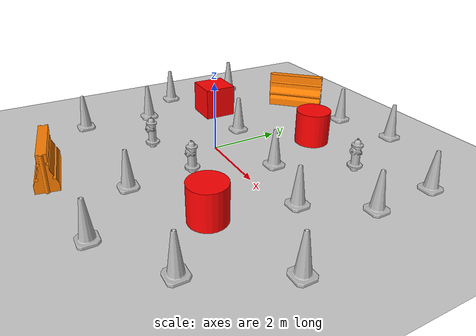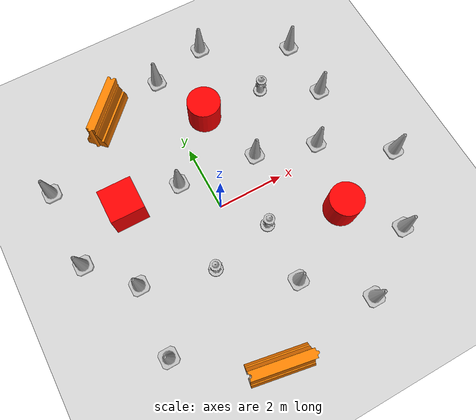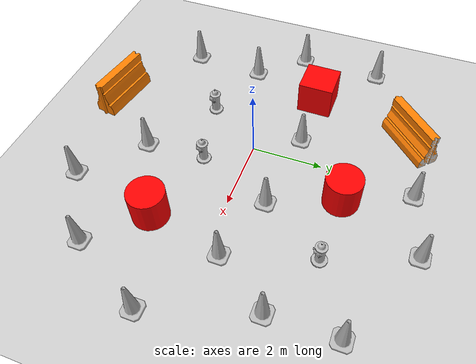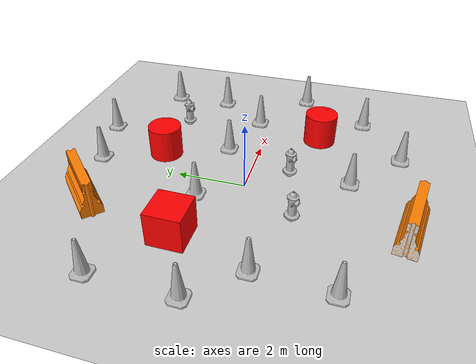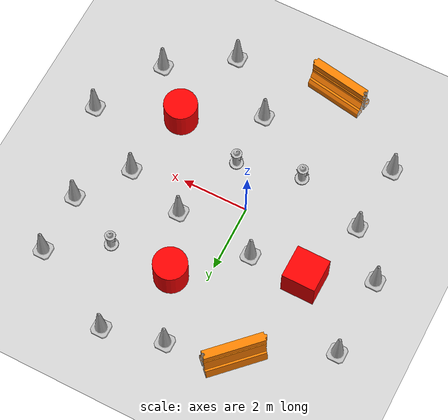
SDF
<sdf version="1.7">
 <world name="default">
  <model name="ground_plane">
   <static>1</static>
   <static>1</static>
   <link name="link">
    <collision name="collision">
     <geometry><plane><normal>0 0 1</normal><size>100 100</size></plane></geometry>
     <surface><friction><ode><mu>100</mu><mu2>50</mu2></ode></friction></surface>
    </collision>
    <visual name="visual">
     <cast_shadows>0</cast_shadows>
     <geometry><plane><normal>0 0 1</normal><size>100 100</size></plane></geometry>
     <material>
      <script><uri>file://media/materials/scripts/gazebo.material</uri><name>Gazebo/Grey</name></script>
     </material>
    </visual>
   </link>
  </model>
  <gravity>0 0 -9.8</gravity>
  <magnetic_field>6e-06 2.3e-05 -4.2e-05</magnetic_field>
  <atmosphere type="adiabatic"/>
  <physics type="ode">
   <max_step_size>0.001</max_step_size>
   <real_time_factor>1</real_time_factor>
   <real_time_update_rate>1000</real_time_update_rate>
  </physics>
  <scene><ambient>0.4 0.4 0.4 1</ambient><background>0.7 0.7 0.7 1</background><shadows>1</shadows></scene>
  <audio><device>default</device></audio>
  <spherical_coordinates>
   <surface_model>EARTH_WGS84</surface_model>
   <latitude_deg>0</latitude_deg>
   <longitude_deg>0</longitude_deg>
   <elevation>0</elevation>
   <heading_deg>0</heading_deg>
  </spherical_coordinates>
  <model name="Construction Cone">
   <static>1</static>
   <link name="link">
    <collision name="collision">
     <geometry>
      <mesh><scale>10 10 10</scale><uri>model://construction_cone/meshes/construction_cone.dae</uri></mesh>
     </geometry>
    </collision>
    <visual name="visual">
     <geometry>
      <mesh><scale>10 10 10</scale><uri>model://construction_cone/meshes/construction_cone.dae</uri></mesh>
     </geometry>
    </visual>
    <inertial>
     <inertia><ixx>1</ixx><ixy>0</ixy><ixz>0</ixz><iyy>1</iyy><iyz>0</iyz><izz>1</izz></inertia>
     <mass>1</mass>
    </inertial>
   </link>
   <pose>-0.747749 1.20224 -8e-06 -6e-06 -0 -0</pose>
  </model>
  <model name="Construction Cone_2_clone_1">
   <static>1</static>
   <link name="link">
    <collision name="collision">
     <geometry>
      <mesh><scale>10 10 10</scale><uri>model://construction_cone/meshes/construction_cone.dae</uri></mesh>
     </geometry>
    </collision>
    <visual name="visual">
     <geometry>
      <mesh><scale>10 10 10</scale><uri>model://construction_cone/meshes/construction_cone.dae</uri></mesh>
     </geometry>
    </visual>
    <inertial>
     <inertia><ixx>1</ixx><ixy>0</ixy><ixz>0</ixz><iyy>1</iyy><iyz>0</iyz><izz>1</izz></inertia>
     <mass>1</mass>
    </inertial>
   </link>
   <pose>3.49756 0.396737 -0 0 -0 0</pose>
  </model>
  <model name="Construction Cone_2_clone_2">
   <static>1</static>
   <link name="link">
    <collision name="collision">
     <geometry>
      <mesh><scale>10 10 10</scale><uri>model://construction_cone/meshes/construction_cone.dae</uri></mesh>
     </geometry>
    </collision>
    <visual name="visual">
     <geometry>
      <mesh><scale>10 10 10</scale><uri>model://construction_cone/meshes/construction_cone.dae</uri></mesh>
     </geometry>
    </visual>
    <inertial>
     <inertia><ixx>1</ixx><ixy>0</ixy><ixz>0</ixz><iyy>1</iyy><iyz>0</iyz><izz>1</izz></inertia>
     <mass>1</mass>
    </inertial>
   </link>
   <pose>-3.067 -0.950282 -0 0 -0 0</pose>
  </model>
  <model name="Construction Cone_2_clone_3">
   <static>1</static>
   <link name="link">
    <collision name="collision">
     <geometry>
      <mesh><scale>10 10 10</scale><uri>model://construction_cone/meshes/construction_cone.dae</uri></mesh>
     </geometry>
    </collision>
    <visual name="visual">
     <geometry>
      <mesh><scale>10 10 10</scale><uri>model://construction_cone/meshes/construction_cone.dae</uri></mesh>
     </geometry>
    </visual>
    <inertial>
     <inertia><ixx>1</ixx><ixy>0</ixy><ixz>0</ixz><iyy>1</iyy><iyz>0</iyz><izz>1</izz></inertia>
     <mass>1</mass>
    </inertial>
   </link>
   <pose>0.88255 -2.90169 -0 0 -1e-06 0</pose>
  </model>
  <model name="Construction Cone_2_clone_5">
   <static>1</static>
   <link name="link">
    <collision name="collision">
     <geometry>
      <mesh><scale>10 10 10</scale><uri>model://construction_cone/meshes/construction_cone.dae</uri></mesh>
     </geometry>
    </collision>
    <visual name="visual">
     <geometry>
      <mesh><scale>10 10 10</scale><uri>model://construction_cone/meshes/construction_cone.dae</uri></mesh>
     </geometry>
    </visual>
    <inertial>
     <inertia><ixx>1</ixx><ixy>0</ixy><ixz>0</ixz><iyy>1</iyy><iyz>0</iyz><izz>1</izz></inertia>
     <mass>1</mass>
    </inertial>
   </link>
   <pose>1.66784 0.95456 -0 0 -0 0</pose>
  </model>
  <model name="Construction Cone_2_clone_6">
   <static>1</static>
   <link name="link">
    <collision name="collision">
     <geometry>
      <mesh><scale>10 10 10</scale><uri>model://construction_cone/meshes/construction_cone.dae</uri></mesh>
     </geometry>
    </collision>
    <visual name="visual">
     <geometry>
      <mesh><scale>10 10 10</scale><uri>model://construction_cone/meshes/construction_cone.dae</uri></mesh>
     </geometry>
    </visual>
    <inertial>
     <inertia><ixx>1</ixx><ixy>0</ixy><ixz>0</ixz><iyy>1</iyy><iyz>0</iyz><izz>1</izz></inertia>
     <mass>1</mass>
    </inertial>
   </link>
   <pose>5.43273 -0.904996 -0 0 -0 0</pose>
  </model>
  <model name="Construction Cone_2_clone_7">
   <static>1</static>
   <link name="link">
    <collision name="collision">
     <geometry>
      <mesh><scale>10 10 10</scale><uri>model://construction_cone/meshes/construction_cone.dae</uri></mesh>
     </geometry>
    </collision>
    <visual name="visual">
     <geometry>
      <mesh><scale>10 10 10</scale><uri>model://construction_cone/meshes/construction_cone.dae</uri></mesh>
     </geometry>
    </visual>
    <inertial>
     <inertia><ixx>1</ixx><ixy>0</ixy><ixz>0</ixz><iyy>1</iyy><iyz>0</iyz><izz>1</izz></inertia>
     <mass>1</mass>
    </inertial>
   </link>
   <pose>0.164914 4.59321 -0 0 -1e-06 0</pose>
  </model>
  <model name="Construction Cone_2_clone_10">
   <static>1</static>
   <link name="link">
    <collision name="collision">
     <geometry>
      <mesh><scale>10 10 10</scale><uri>model://construction_cone/meshes/construction_cone.dae</uri></mesh>
     </geometry>
    </collision>
    <visual name="visual">
     <geometry>
      <mesh><scale>10 10 10</scale><uri>model://construction_cone/meshes/construction_cone.dae</uri></mesh>
     </geometry>
    </visual>
    <inertial>
     <inertia><ixx>1</ixx><ixy>0</ixy><ixz>0</ixz><iyy>1</iyy><iyz>0</iyz><izz>1</izz></inertia>
     <mass>1</mass>
    </inertial>
   </link>
   <pose>4.53467 1.89608 -0 0 -1e-06 0</pose>
  </model>
  <model name="Construction Cone_2_clone_12">
   <static>1</static>
   <link name="link">
    <collision name="collision">
     <geometry>
      <mesh><scale>10 10 10</scale><uri>model://construction_cone/meshes/construction_cone.dae</uri></mesh>
     </geometry>
    </collision>
    <visual name="visual">
     <geometry>
      <mesh><scale>10 10 10</scale><uri>model://construction_cone/meshes/construction_cone.dae</uri></mesh>
     </geometry>
    </visual>
    <inertial>
     <inertia><ixx>1</ixx><ixy>0</ixy><ixz>0</ixz><iyy>1</iyy><iyz>0</iyz><izz>1</izz></inertia>
     <mass>1</mass>
    </inertial>
   </link>
   <pose>-3.18421 -3.03294 -1e-06 2e-06 2e-06 0</pose>
  </model>
  <model name="Construction Cone_2_clone_14">
   <static>1</static>
   <link name="link">
    <collision name="collision">
     <geometry>
      <mesh><scale>10 10 10</scale><uri>model://construction_cone/meshes/construction_cone.dae</uri></mesh>
     </geometry>
    </collision>
    <visual name="visual">
     <geometry>
      <mesh><scale>10 10 10</scale><uri>model://construction_cone/meshes/construction_cone.dae</uri></mesh>
     </geometry>
    </visual>
    <inertial>
     <inertia><ixx>1</ixx><ixy>0</ixy><ixz>0</ixz><iyy>1</iyy><iyz>0</iyz><izz>1</izz></inertia>
     <mass>1</mass>
    </inertial>
   </link>
   <pose>-4.17312 2.69825 1e-06 -3e-06 0 0</pose>
  </model>
  <model name="Construction Cone_2_clone_15">
   <static>1</static>
   <link name="link">
    <collision name="collision">
     <geometry>
      <mesh><scale>10 10 10</scale><uri>model://construction_cone/meshes/construction_cone.dae</uri></mesh>
     </geometry>
    </collision>
    <visual name="visual">
     <geometry>
      <mesh><scale>10 10 10</scale><uri>model://construction_cone/meshes/construction_cone.dae</uri></mesh>
     </geometry>
    </visual>
    <inertial>
     <inertia><ixx>1</ixx><ixy>0</ixy><ixz>0</ixz><iyy>1</iyy><iyz>0</iyz><izz>1</izz></inertia>
     <mass>1</mass>
    </inertial>
   </link>
   <pose>1.92109 5.03283 -0 -0 -0 -0</pose>
  </model>
  <model name="Construction Cone_2_clone_16">
   <static>1</static>
   <link name="link">
    <collision name="collision">
     <geometry>
      <mesh><scale>10 10 10</scale><uri>model://construction_cone/meshes/construction_cone.dae</uri></mesh>
     </geometry>
    </collision>
    <visual name="visual">
     <geometry>
      <mesh><scale>10 10 10</scale><uri>model://construction_cone/meshes/construction_cone.dae</uri></mesh>
     </geometry>
    </visual>
    <inertial>
     <inertia><ixx>1</ixx><ixy>0</ixy><ixz>0</ixz><iyy>1</iyy><iyz>0</iyz><izz>1</izz></inertia>
     <mass>1</mass>
    </inertial>
   </link>
   <pose>-4.20467 0.30746 -0 0 -1e-06 0</pose>
  </model>
  <model name="Construction Cone_2_clone_17">
   <static>1</static>
   <link name="link">
    <collision name="collision">
     <geometry>
      <mesh><scale>10 10 10</scale><uri>model://construction_cone/meshes/construction_cone.dae</uri></mesh>
     </geometry>
    </collision>
    <visual name="visual">
     <geometry>
      <mesh><scale>10 10 10</scale><uri>model://construction_cone/meshes/construction_cone.dae</uri></mesh>
     </geometry>
    </visual>
    <inertial>
     <inertia><ixx>1</ixx><ixy>0</ixy><ixz>0</ixz><iyy>1</iyy><iyz>0</iyz><izz>1</izz></inertia>
     <mass>1</mass>
    </inertial>
   </link>
   <pose>2.46933 -4.28004 -5e-06 -4e-06 1e-06 0</pose>
  </model>
  <model name="Construction Cone_2_clone_18">
   <static>1</static>
   <link name="link">
    <collision name="collision">
     <geometry>
      <mesh><scale>10 10 10</scale><uri>model://construction_cone/meshes/construction_cone.dae</uri></mesh>
     </geometry>
    </collision>
    <visual name="visual">
     <geometry>
      <mesh><scale>10 10 10</scale><uri>model://construction_cone/meshes/construction_cone.dae</uri></mesh>
     </geometry>
    </visual>
    <inertial>
     <inertia><ixx>1</ixx><ixy>0</ixy><ixz>0</ixz><iyy>1</iyy><iyz>0</iyz><izz>1</izz></inertia>
     <mass>1</mass>
    </inertial>
   </link>
   <pose>4.2983 -3.02466 -0 0 -0 0</pose>
  </model>
  <model name="Construction Cone_2_clone_19">
   <static>1</static>
   <link name="link">
    <collision name="collision">
     <geometry>
      <mesh><scale>10 10 10</scale><uri>model://construction_cone/meshes/construction_cone.dae</uri></mesh>
     </geometry>
    </collision>
    <visual name="visual">
     <geometry>
      <mesh><scale>10 10 10</scale><uri>model://construction_cone/meshes/construction_cone.dae</uri></mesh>
     </geometry>
    </visual>
    <inertial>
     <inertia><ixx>1</ixx><ixy>0</ixy><ixz>0</ixz><iyy>1</iyy><iyz>0</iyz><izz>1</izz></inertia>
     <mass>1</mass>
    </inertial>
   </link>
   <pose>4.50964 3.73665 -0 0 -0 0</pose>
  </model>
  <model name="fire_hydrant">
   <static>1</static>
   <static>1</static>
   <link name="link">
    <collision name="collision">
     <geometry><mesh><uri>model://fire_hydrant/meshes/fire_hydrant.dae</uri></mesh></geometry>
    </collision>
    <visual name="visual">
     <geometry><mesh><uri>model://fire_hydrant/meshes/fire_hydrant.dae</uri></mesh></geometry>
    </visual>
   </link>
   <pose>0.89565 -1.14184 0 0 -0 0</pose>
  </model>
  <model name="drc_practice_organge_jersey_barrier">
   <static>1</static>
   <static>1</static>
   <link name="link">
    <visual name="visual">
     <geometry>
      <mesh><uri>model://drc_practice_orange_jersey_barrier/meshes/jersey_barrier.dae</uri></mesh>
     </geometry>
    </visual>
    <collision name="collision">
     <geometry>
      <mesh><uri>model://drc_practice_orange_jersey_barrier/meshes/jersey_barrier.dae</uri></mesh>
     </geometry>
    </collision>
   </link>
   <pose>-1.71485 4.13318 0 0 0 -0.776203</pose>
  </model>
  <model name="unit_cylinder">
   <static>1</static>
   <pose>2.99982 -1.7103 0.499998 3e-06 -2e-06 0</pose>
   <link name="link">
    <inertial>
     <mass>5</mass>
     <inertia><ixx>0.145833</ixx><ixy>0</ixy><ixz>0</ixz><iyy>0.145833</iyy><iyz>0</iyz><izz>0.125</izz></inertia>
    </inertial>
    <collision name="collision">
     <geometry><cylinder><radius>0.5</radius><length>1</length></cylinder></geometry>
     <material><ambient>1 0 0 1</ambient><diffuse>1 0 0 1</diffuse><specular>0.5 0.5 0.5 1</specular></material>
    </collision>
    <visual name="visual">
     <geometry><cylinder><radius>0.5</radius><length>1</length></cylinder></geometry>
     <material><ambient>1 0 0 1</ambient><diffuse>1 0 0 1</diffuse><specular>0.5 0.5 0.5 1</specular></material>
     <material>
      <script><name>Gazebo/Grey</name><uri>file://media/materials/scripts/gazebo.material</uri></script>
     </material>
    </visual>
   </link>
  </model>
  <model name="unit_box">
   <static>1</static>
   <pose>-2.44648 1.21196 0.499995 -0 1e-05 -0.008608</pose>
   <link name="link">
    <inertial>
     <mass>5</mass>
     <inertia>
      <ixx>0.166667</ixx>
      <ixy>0</ixy>
      <ixz>0</ixz>
      <iyy>0.166667</iyy>
      <iyz>0</iyz>
      <izz>0.166667</izz>
     </inertia>
    </inertial>
    <collision name="collision">
     <geometry><box><size>1 1 1</size></box></geometry>
     <material><ambient>1 0 0 1</ambient><diffuse>1 0 0 1</diffuse><specular>0.5 0.5 0.5 1</specular></material>
    </collision>
    <visual name="visual">
     <geometry><box><size>1 1 1</size></box></geometry>
     <material><ambient>1 0 0 1</ambient><diffuse>1 0 0 1</diffuse><specular>0.5 0.5 0.5 1</specular></material>
     <material>
      <script><name>Gazebo/Red</name><uri>file://media/materials/scripts/gazebo.material</uri></script>
     </material>
    </visual>
   </link>
  </model>
  <model name="drc_practice_organge_jersey_barrier_clone">
   <static>1</static>
   <static>1</static>
   <link name="link">
    <visual name="visual">
     <geometry>
      <mesh><uri>model://drc_practice_orange_jersey_barrier/meshes/jersey_barrier.dae</uri></mesh>
     </geometry>
    </visual>
    <collision name="collision">
     <geometry>
      <mesh><uri>model://drc_practice_orange_jersey_barrier/meshes/jersey_barrier.dae</uri></mesh>
     </geometry>
    </collision>
   </link>
   <pose>-0.719482 -4.57191 0 0 -0 1.40113</pose>
  </model>
  <model name="unit_cylinder_clone">
   <static>1</static>
   <pose>0.933165 2.7958 0.499996 3e-06 3e-06 0</pose>
   <link name="link">
    <inertial>
     <mass>5</mass>
     <inertia><ixx>0.145833</ixx><ixy>0</ixy><ixz>0</ixz><iyy>0.145833</iyy><iyz>0</iyz><izz>0.125</izz></inertia>
    </inertial>
    <collision name="collision">
     <geometry><cylinder><radius>0.5</radius><length>1</length></cylinder></geometry>
     <material><ambient>1 0 0 1</ambient><diffuse>1 0 0 1</diffuse><specular>0.5 0.5 0.5 1</specular></material>
    </collision>
    <visual name="visual">
     <geometry><cylinder><radius>0.5</radius><length>1</length></cylinder></geometry>
     <material><ambient>1 0 0 1</ambient><diffuse>1 0 0 1</diffuse><specular>0.5 0.5 0.5 1</specular></material>
     <material>
      <script><name>Gazebo/Grey</name><uri>file://media/materials/scripts/gazebo.material</uri></script>
     </material>
    </visual>
   </link>
  </model>
  <model name="fire_hydrant_clone">
   <static>1</static>
   <static>1</static>
   <link name="link">
    <collision name="collision">
     <geometry><mesh><uri>model://fire_hydrant/meshes/fire_hydrant.dae</uri></mesh></geometry>
    </collision>
    <visual name="visual">
     <geometry><mesh><uri>model://fire_hydrant/meshes/fire_hydrant.dae</uri></mesh></geometry>
    </visual>
   </link>
   <pose>2.86157 2.74419 0 0 -0 0</pose>
  </model>
  <model name="fire_hydrant_clone_0">
   <static>1</static>
   <static>1</static>
   <link name="link">
    <collision name="collision">
     <geometry><mesh><uri>model://fire_hydrant/meshes/fire_hydrant.dae</uri></mesh></geometry>
    </collision>
    <visual name="visual">
     <geometry><mesh><uri>model://fire_hydrant/meshes/fire_hydrant.dae</uri></mesh></geometry>
    </visual>
   </link>
   <pose>-0.997308 -1.56546 0 0 -0 0</pose>
  </model>
 </world>
</sdf>
